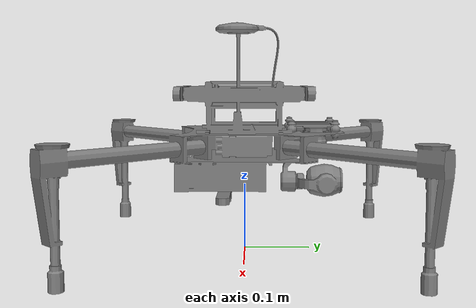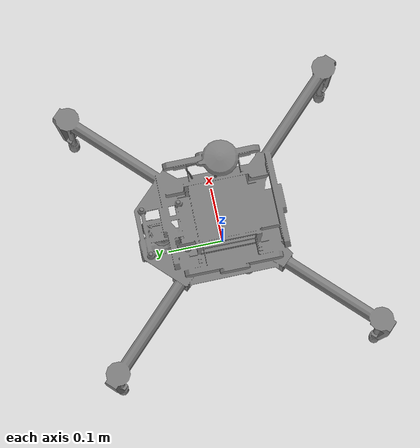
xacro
<?xml version="1.0"?>

<robot xmlns:xacro="http://www.ros.org/wiki/xacro" name="dji_m100">

  <link
    name="base_link">
    <inertial>
      <origin
        xyz="0.00071795 -0.015779 -0.034723"
        rpy="0 0 0" />
      <mass
        value="2.6" />
      <inertia
        ixx="0.019226"
        ixy="8.1688E-05"
        ixz="0.00043758"
        iyy="0.018142"
        iyz="0.00062678"
        izz="0.032239" />
    </inertial>
    <visual>
      <origin
        xyz="0 0 0"
        rpy="0 0 0" />
      <geometry>
        <mesh
          filename="package://abs_quadrotor_description/meshes/dji_m100_body_rough.dae" />
      </geometry>
      <material
        name="">
        <color
          rgba="0.5 0.5 0.5 1" />
      </material>
    </visual>
    <collision>
      <origin
        xyz="0 0 0"
        rpy="0 0 0" />
      <geometry>
        <mesh
          filename="package://abs_quadrotor_description/meshes/djim100_body_rough.dae" />
      </geometry>
    </collision>
  </link>

</robot>
